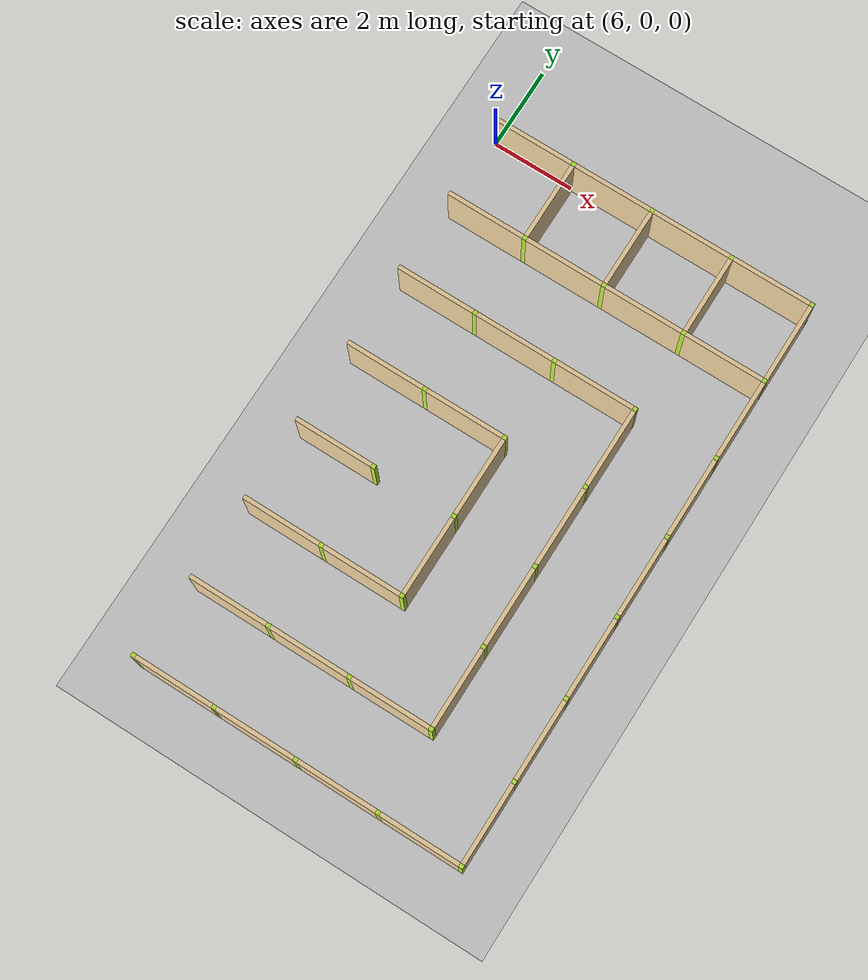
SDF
<sdf version="1.4">
 <world name="maze_world">
  <model name="ground">
   <static>true</static>
   <link name="ground_link">
    <collision name="collision1"><geometry><plane><normal>0 0 1</normal></plane></geometry></collision>
    <visual name="visual1"><geometry><plane><normal>0 0 1</normal><size>100 100</size></plane></geometry></visual>
   </link>
  </model>
  <model name="Untitled">
   <link name="Wall_3_0_h">
    <collision name="Wall_0_Collision">
     <geometry><box><size>1.9 0.1 1.5</size></box></geometry>
     <pose>0 0 0.75 0 -0 0</pose>
    </collision>
    <visual name="Wall_0_Visual">
     <pose>0 0 0.75 0 -0 0</pose>
     <geometry><box><size>1.9 0.1 1.5</size></box></geometry>
     <material>
      <script><uri>file://media/materials/scripts/gazebo.material</uri><name>Gazebo/Grey</name></script>
      <ambient>0.921569 0.807843 0.615686 1</ambient>
     </material>
     <meta><layer>0</layer></meta>
    </visual>
    <pose>7.0 0 0 0 -0 0</pose>
   </link>
   <link name="Wall_4_0_h">
    <collision name="Wall_0_Collision">
     <geometry><box><size>1.9 0.1 1.5</size></box></geometry>
     <pose>0 0 0.75 0 -0 0</pose>
    </collision>
    <visual name="Wall_0_Visual">
     <pose>0 0 0.75 0 -0 0</pose>
     <geometry><box><size>1.9 0.1 1.5</size></box></geometry>
     <material>
      <script><uri>file://media/materials/scripts/gazebo.material</uri><name>Gazebo/Grey</name></script>
      <ambient>0.921569 0.807843 0.615686 1</ambient>
     </material>
     <meta><layer>0</layer></meta>
    </visual>
    <pose>9.0 0 0 0 -0 0</pose>
   </link>
   <link name="Wall_4_0_v">
    <collision name="Wall_0_Collision">
     <geometry><box><size>1.9 0.1 1.5</size></box></geometry>
     <pose>0 0 0.75 0 -0 0</pose>
    </collision>
    <visual name="Wall_0_Visual">
     <pose>0 0 0.75 0 -0 0</pose>
     <geometry><box><size>1.9 0.1 1.5</size></box></geometry>
     <material>
      <script><uri>file://media/materials/scripts/gazebo.material</uri><name>Gazebo/Grey</name></script>
      <ambient>0.921569 0.807843 0.615686 1</ambient>
     </material>
     <meta><layer>0</layer></meta>
    </visual>
    <pose>8 -1.0 0 0 -0 1.5708</pose>
   </link>
   <link name="Joint_8_0">
    <collision name="Wall_2_Collision">
     <geometry><box><size>0.1 0.1 1.5</size></box></geometry>
     <pose>0 0 0.75 0 -0 0</pose>
    </collision>
    <visual name="Wall_2_Visual">
     <pose>0 0 0.75 0 -0 0</pose>
     <geometry><box><size>0.1 0.1 1.5</size></box></geometry>
     <material>
      <script><uri>file://media/materials/scripts/gazebo.material</uri><name>Gazebo/Grey</name></script>
      <ambient>0.721569 0.907843 0.215686 1</ambient>
     </material>
     <meta><layer>0</layer></meta>
    </visual>
    <pose>8 0 0 0 -0 0</pose>
   </link>
   <link name="Wall_5_0_h">
    <collision name="Wall_0_Collision">
     <geometry><box><size>1.9 0.1 1.5</size></box></geometry>
     <pose>0 0 0.75 0 -0 0</pose>
    </collision>
    <visual name="Wall_0_Visual">
     <pose>0 0 0.75 0 -0 0</pose>
     <geometry><box><size>1.9 0.1 1.5</size></box></geometry>
     <material>
      <script><uri>file://media/materials/scripts/gazebo.material</uri><name>Gazebo/Grey</name></script>
      <ambient>0.921569 0.807843 0.615686 1</ambient>
     </material>
     <meta><layer>0</layer></meta>
    </visual>
    <pose>11.0 0 0 0 -0 0</pose>
   </link>
   <link name="Wall_5_0_v">
    <collision name="Wall_0_Collision">
     <geometry><box><size>1.9 0.1 1.5</size></box></geometry>
     <pose>0 0 0.75 0 -0 0</pose>
    </collision>
    <visual name="Wall_0_Visual">
     <pose>0 0 0.75 0 -0 0</pose>
     <geometry><box><size>1.9 0.1 1.5</size></box></geometry>
     <material>
      <script><uri>file://media/materials/scripts/gazebo.material</uri><name>Gazebo/Grey</name></script>
      <ambient>0.921569 0.807843 0.615686 1</ambient>
     </material>
     <meta><layer>0</layer></meta>
    </visual>
    <pose>10 -1.0 0 0 -0 1.5708</pose>
   </link>
   <link name="Joint_10_0">
    <collision name="Wall_2_Collision">
     <geometry><box><size>0.1 0.1 1.5</size></box></geometry>
     <pose>0 0 0.75 0 -0 0</pose>
    </collision>
    <visual name="Wall_2_Visual">
     <pose>0 0 0.75 0 -0 0</pose>
     <geometry><box><size>0.1 0.1 1.5</size></box></geometry>
     <material>
      <script><uri>file://media/materials/scripts/gazebo.material</uri><name>Gazebo/Grey</name></script>
      <ambient>0.721569 0.907843 0.215686 1</ambient>
     </material>
     <meta><layer>0</layer></meta>
    </visual>
    <pose>10 0 0 0 -0 0</pose>
   </link>
   <link name="Wall_6_0_h">
    <collision name="Wall_0_Collision">
     <geometry><box><size>1.9 0.1 1.5</size></box></geometry>
     <pose>0 0 0.75 0 -0 0</pose>
    </collision>
    <visual name="Wall_0_Visual">
     <pose>0 0 0.75 0 -0 0</pose>
     <geometry><box><size>1.9 0.1 1.5</size></box></geometry>
     <material>
      <script><uri>file://media/materials/scripts/gazebo.material</uri><name>Gazebo/Grey</name></script>
      <ambient>0.921569 0.807843 0.615686 1</ambient>
     </material>
     <meta><layer>0</layer></meta>
    </visual>
    <pose>13.0 0 0 0 -0 0</pose>
   </link>
   <link name="Wall_6_0_v">
    <collision name="Wall_0_Collision">
     <geometry><box><size>1.9 0.1 1.5</size></box></geometry>
     <pose>0 0 0.75 0 -0 0</pose>
    </collision>
    <visual name="Wall_0_Visual">
     <pose>0 0 0.75 0 -0 0</pose>
     <geometry><box><size>1.9 0.1 1.5</size></box></geometry>
     <material>
      <script><uri>file://media/materials/scripts/gazebo.material</uri><name>Gazebo/Grey</name></script>
      <ambient>0.921569 0.807843 0.615686 1</ambient>
     </material>
     <meta><layer>0</layer></meta>
    </visual>
    <pose>12 -1.0 0 0 -0 1.5708</pose>
   </link>
   <link name="Joint_12_0">
    <collision name="Wall_2_Collision">
     <geometry><box><size>0.1 0.1 1.5</size></box></geometry>
     <pose>0 0 0.75 0 -0 0</pose>
    </collision>
    <visual name="Wall_2_Visual">
     <pose>0 0 0.75 0 -0 0</pose>
     <geometry><box><size>0.1 0.1 1.5</size></box></geometry>
     <material>
      <script><uri>file://media/materials/scripts/gazebo.material</uri><name>Gazebo/Grey</name></script>
      <ambient>0.721569 0.907843 0.215686 1</ambient>
     </material>
     <meta><layer>0</layer></meta>
    </visual>
    <pose>12 0 0 0 -0 0</pose>
   </link>
   <link name="Wall_7_0_v">
    <collision name="Wall_0_Collision">
     <geometry><box><size>1.9 0.1 1.5</size></box></geometry>
     <pose>0 0 0.75 0 -0 0</pose>
    </collision>
    <visual name="Wall_0_Visual">
     <pose>0 0 0.75 0 -0 0</pose>
     <geometry><box><size>1.9 0.1 1.5</size></box></geometry>
     <material>
      <script><uri>file://media/materials/scripts/gazebo.material</uri><name>Gazebo/Grey</name></script>
      <ambient>0.921569 0.807843 0.615686 1</ambient>
     </material>
     <meta><layer>0</layer></meta>
    </visual>
    <pose>14 -1.0 0 0 -0 1.5708</pose>
   </link>
   <link name="Joint_14_0">
    <collision name="Wall_2_Collision">
     <geometry><box><size>0.1 0.1 1.5</size></box></geometry>
     <pose>0 0 0.75 0 -0 0</pose>
    </collision>
    <visual name="Wall_2_Visual">
     <pose>0 0 0.75 0 -0 0</pose>
     <geometry><box><size>0.1 0.1 1.5</size></box></geometry>
     <material>
      <script><uri>file://media/materials/scripts/gazebo.material</uri><name>Gazebo/Grey</name></script>
      <ambient>0.721569 0.907843 0.215686 1</ambient>
     </material>
     <meta><layer>0</layer></meta>
    </visual>
    <pose>14 0 0 0 -0 0</pose>
   </link>
   <link name="Wall_3_1_h">
    <collision name="Wall_0_Collision">
     <geometry><box><size>1.9 0.1 1.5</size></box></geometry>
     <pose>0 0 0.75 0 -0 0</pose>
    </collision>
    <visual name="Wall_0_Visual">
     <pose>0 0 0.75 0 -0 0</pose>
     <geometry><box><size>1.9 0.1 1.5</size></box></geometry>
     <material>
      <script><uri>file://media/materials/scripts/gazebo.material</uri><name>Gazebo/Grey</name></script>
      <ambient>0.921569 0.807843 0.615686 1</ambient>
     </material>
     <meta><layer>0</layer></meta>
    </visual>
    <pose>7.0 -2 0 0 -0 0</pose>
   </link>
   <link name="Wall_4_1_h">
    <collision name="Wall_0_Collision">
     <geometry><box><size>1.9 0.1 1.5</size></box></geometry>
     <pose>0 0 0.75 0 -0 0</pose>
    </collision>
    <visual name="Wall_0_Visual">
     <pose>0 0 0.75 0 -0 0</pose>
     <geometry><box><size>1.9 0.1 1.5</size></box></geometry>
     <material>
      <script><uri>file://media/materials/scripts/gazebo.material</uri><name>Gazebo/Grey</name></script>
      <ambient>0.921569 0.807843 0.615686 1</ambient>
     </material>
     <meta><layer>0</layer></meta>
    </visual>
    <pose>9.0 -2 0 0 -0 0</pose>
   </link>
   <link name="Joint_8_-2">
    <collision name="Wall_2_Collision">
     <geometry><box><size>0.1 0.1 1.5</size></box></geometry>
     <pose>0 0 0.75 0 -0 0</pose>
    </collision>
    <visual name="Wall_2_Visual">
     <pose>0 0 0.75 0 -0 0</pose>
     <geometry><box><size>0.1 0.1 1.5</size></box></geometry>
     <material>
      <script><uri>file://media/materials/scripts/gazebo.material</uri><name>Gazebo/Grey</name></script>
      <ambient>0.721569 0.907843 0.215686 1</ambient>
     </material>
     <meta><layer>0</layer></meta>
    </visual>
    <pose>8 -2 0 0 -0 0</pose>
   </link>
   <link name="Wall_5_1_h">
    <collision name="Wall_0_Collision">
     <geometry><box><size>1.9 0.1 1.5</size></box></geometry>
     <pose>0 0 0.75 0 -0 0</pose>
    </collision>
    <visual name="Wall_0_Visual">
     <pose>0 0 0.75 0 -0 0</pose>
     <geometry><box><size>1.9 0.1 1.5</size></box></geometry>
     <material>
      <script><uri>file://media/materials/scripts/gazebo.material</uri><name>Gazebo/Grey</name></script>
      <ambient>0.921569 0.807843 0.615686 1</ambient>
     </material>
     <meta><layer>0</layer></meta>
    </visual>
    <pose>11.0 -2 0 0 -0 0</pose>
   </link>
   <link name="Joint_10_-2">
    <collision name="Wall_2_Collision">
     <geometry><box><size>0.1 0.1 1.5</size></box></geometry>
     <pose>0 0 0.75 0 -0 0</pose>
    </collision>
    <visual name="Wall_2_Visual">
     <pose>0 0 0.75 0 -0 0</pose>
     <geometry><box><size>0.1 0.1 1.5</size></box></geometry>
     <material>
      <script><uri>file://media/materials/scripts/gazebo.material</uri><name>Gazebo/Grey</name></script>
      <ambient>0.721569 0.907843 0.215686 1</ambient>
     </material>
     <meta><layer>0</layer></meta>
    </visual>
    <pose>10 -2 0 0 -0 0</pose>
   </link>
   <link name="Wall_6_1_h">
    <collision name="Wall_0_Collision">
     <geometry><box><size>1.9 0.1 1.5</size></box></geometry>
     <pose>0 0 0.75 0 -0 0</pose>
    </collision>
    <visual name="Wall_0_Visual">
     <pose>0 0 0.75 0 -0 0</pose>
     <geometry><box><size>1.9 0.1 1.5</size></box></geometry>
     <material>
      <script><uri>file://media/materials/scripts/gazebo.material</uri><name>Gazebo/Grey</name></script>
      <ambient>0.921569 0.807843 0.615686 1</ambient>
     </material>
     <meta><layer>0</layer></meta>
    </visual>
    <pose>13.0 -2 0 0 -0 0</pose>
   </link>
   <link name="Joint_12_-2">
    <collision name="Wall_2_Collision">
     <geometry><box><size>0.1 0.1 1.5</size></box></geometry>
     <pose>0 0 0.75 0 -0 0</pose>
    </collision>
    <visual name="Wall_2_Visual">
     <pose>0 0 0.75 0 -0 0</pose>
     <geometry><box><size>0.1 0.1 1.5</size></box></geometry>
     <material>
      <script><uri>file://media/materials/scripts/gazebo.material</uri><name>Gazebo/Grey</name></script>
      <ambient>0.721569 0.907843 0.215686 1</ambient>
     </material>
     <meta><layer>0</layer></meta>
    </visual>
    <pose>12 -2 0 0 -0 0</pose>
   </link>
   <link name="Wall_7_1_v">
    <collision name="Wall_0_Collision">
     <geometry><box><size>1.9 0.1 1.5</size></box></geometry>
     <pose>0 0 0.75 0 -0 0</pose>
    </collision>
    <visual name="Wall_0_Visual">
     <pose>0 0 0.75 0 -0 0</pose>
     <geometry><box><size>1.9 0.1 1.5</size></box></geometry>
     <material>
      <script><uri>file://media/materials/scripts/gazebo.material</uri><name>Gazebo/Grey</name></script>
      <ambient>0.921569 0.807843 0.615686 1</ambient>
     </material>
     <meta><layer>0</layer></meta>
    </visual>
    <pose>14 -3.0 0 0 -0 1.5708</pose>
   </link>
   <link name="Joint_14_-2">
    <collision name="Wall_2_Collision">
     <geometry><box><size>0.1 0.1 1.5</size></box></geometry>
     <pose>0 0 0.75 0 -0 0</pose>
    </collision>
    <visual name="Wall_2_Visual">
     <pose>0 0 0.75 0 -0 0</pose>
     <geometry><box><size>0.1 0.1 1.5</size></box></geometry>
     <material>
      <script><uri>file://media/materials/scripts/gazebo.material</uri><name>Gazebo/Grey</name></script>
      <ambient>0.721569 0.907843 0.215686 1</ambient>
     </material>
     <meta><layer>0</layer></meta>
    </visual>
    <pose>14 -2 0 0 -0 0</pose>
   </link>
   <link name="Wall_3_2_h">
    <collision name="Wall_0_Collision">
     <geometry><box><size>1.9 0.1 1.5</size></box></geometry>
     <pose>0 0 0.75 0 -0 0</pose>
    </collision>
    <visual name="Wall_0_Visual">
     <pose>0 0 0.75 0 -0 0</pose>
     <geometry><box><size>1.9 0.1 1.5</size></box></geometry>
     <material>
      <script><uri>file://media/materials/scripts/gazebo.material</uri><name>Gazebo/Grey</name></script>
      <ambient>0.921569 0.807843 0.615686 1</ambient>
     </material>
     <meta><layer>0</layer></meta>
    </visual>
    <pose>7.0 -4 0 0 -0 0</pose>
   </link>
   <link name="Wall_4_2_h">
    <collision name="Wall_0_Collision">
     <geometry><box><size>1.9 0.1 1.5</size></box></geometry>
     <pose>0 0 0.75 0 -0 0</pose>
    </collision>
    <visual name="Wall_0_Visual">
     <pose>0 0 0.75 0 -0 0</pose>
     <geometry><box><size>1.9 0.1 1.5</size></box></geometry>
     <material>
      <script><uri>file://media/materials/scripts/gazebo.material</uri><name>Gazebo/Grey</name></script>
      <ambient>0.921569 0.807843 0.615686 1</ambient>
     </material>
     <meta><layer>0</layer></meta>
    </visual>
    <pose>9.0 -4 0 0 -0 0</pose>
   </link>
   <link name="Joint_8_-4">
    <collision name="Wall_2_Collision">
     <geometry><box><size>0.1 0.1 1.5</size></box></geometry>
     <pose>0 0 0.75 0 -0 0</pose>
    </collision>
    <visual name="Wall_2_Visual">
     <pose>0 0 0.75 0 -0 0</pose>
     <geometry><box><size>0.1 0.1 1.5</size></box></geometry>
     <material>
      <script><uri>file://media/materials/scripts/gazebo.material</uri><name>Gazebo/Grey</name></script>
      <ambient>0.721569 0.907843 0.215686 1</ambient>
     </material>
     <meta><layer>0</layer></meta>
    </visual>
    <pose>8 -4 0 0 -0 0</pose>
   </link>
   <link name="Wall_5_2_h">
    <collision name="Wall_0_Collision">
     <geometry><box><size>1.9 0.1 1.5</size></box></geometry>
     <pose>0 0 0.75 0 -0 0</pose>
    </collision>
    <visual name="Wall_0_Visual">
     <pose>0 0 0.75 0 -0 0</pose>
     <geometry><box><size>1.9 0.1 1.5</size></box></geometry>
     <material>
      <script><uri>file://media/materials/scripts/gazebo.material</uri><name>Gazebo/Grey</name></script>
      <ambient>0.921569 0.807843 0.615686 1</ambient>
     </material>
     <meta><layer>0</layer></meta>
    </visual>
    <pose>11.0 -4 0 0 -0 0</pose>
   </link>
   <link name="Joint_10_-4">
    <collision name="Wall_2_Collision">
     <geometry><box><size>0.1 0.1 1.5</size></box></geometry>
     <pose>0 0 0.75 0 -0 0</pose>
    </collision>
    <visual name="Wall_2_Visual">
     <pose>0 0 0.75 0 -0 0</pose>
     <geometry><box><size>0.1 0.1 1.5</size></box></geometry>
     <material>
      <script><uri>file://media/materials/scripts/gazebo.material</uri><name>Gazebo/Grey</name></script>
      <ambient>0.721569 0.907843 0.215686 1</ambient>
     </material>
     <meta><layer>0</layer></meta>
    </visual>
    <pose>10 -4 0 0 -0 0</pose>
   </link>
   <link name="Wall_6_2_v">
    <collision name="Wall_0_Collision">
     <geometry><box><size>1.9 0.1 1.5</size></box></geometry>
     <pose>0 0 0.75 0 -0 0</pose>
    </collision>
    <visual name="Wall_0_Visual">
     <pose>0 0 0.75 0 -0 0</pose>
     <geometry><box><size>1.9 0.1 1.5</size></box></geometry>
     <material>
      <script><uri>file://media/materials/scripts/gazebo.material</uri><name>Gazebo/Grey</name></script>
      <ambient>0.921569 0.807843 0.615686 1</ambient>
     </material>
     <meta><layer>0</layer></meta>
    </visual>
    <pose>12 -5.0 0 0 -0 1.5708</pose>
   </link>
   <link name="Joint_12_-4">
    <collision name="Wall_2_Collision">
     <geometry><box><size>0.1 0.1 1.5</size></box></geometry>
     <pose>0 0 0.75 0 -0 0</pose>
    </collision>
    <visual name="Wall_2_Visual">
     <pose>0 0 0.75 0 -0 0</pose>
     <geometry><box><size>0.1 0.1 1.5</size></box></geometry>
     <material>
      <script><uri>file://media/materials/scripts/gazebo.material</uri><name>Gazebo/Grey</name></script>
      <ambient>0.721569 0.907843 0.215686 1</ambient>
     </material>
     <meta><layer>0</layer></meta>
    </visual>
    <pose>12 -4 0 0 -0 0</pose>
   </link>
   <link name="Wall_7_2_v">
    <collision name="Wall_0_Collision">
     <geometry><box><size>1.9 0.1 1.5</size></box></geometry>
     <pose>0 0 0.75 0 -0 0</pose>
    </collision>
    <visual name="Wall_0_Visual">
     <pose>0 0 0.75 0 -0 0</pose>
     <geometry><box><size>1.9 0.1 1.5</size></box></geometry>
     <material>
      <script><uri>file://media/materials/scripts/gazebo.material</uri><name>Gazebo/Grey</name></script>
      <ambient>0.921569 0.807843 0.615686 1</ambient>
     </material>
     <meta><layer>0</layer></meta>
    </visual>
    <pose>14 -5.0 0 0 -0 1.5708</pose>
   </link>
   <link name="Joint_14_-4">
    <collision name="Wall_2_Collision">
     <geometry><box><size>0.1 0.1 1.5</size></box></geometry>
     <pose>0 0 0.75 0 -0 0</pose>
    </collision>
    <visual name="Wall_2_Visual">
     <pose>0 0 0.75 0 -0 0</pose>
     <geometry><box><size>0.1 0.1 1.5</size></box></geometry>
     <material>
      <script><uri>file://media/materials/scripts/gazebo.material</uri><name>Gazebo/Grey</name></script>
      <ambient>0.721569 0.907843 0.215686 1</ambient>
     </material>
     <meta><layer>0</layer></meta>
    </visual>
    <pose>14 -4 0 0 -0 0</pose>
   </link>
   <link name="Wall_3_3_h">
    <collision name="Wall_0_Collision">
     <geometry><box><size>1.9 0.1 1.5</size></box></geometry>
     <pose>0 0 0.75 0 -0 0</pose>
    </collision>
    <visual name="Wall_0_Visual">
     <pose>0 0 0.75 0 -0 0</pose>
     <geometry><box><size>1.9 0.1 1.5</size></box></geometry>
     <material>
      <script><uri>file://media/materials/scripts/gazebo.material</uri><name>Gazebo/Grey</name></script>
      <ambient>0.921569 0.807843 0.615686 1</ambient>
     </material>
     <meta><layer>0</layer></meta>
    </visual>
    <pose>7.0 -6 0 0 -0 0</pose>
   </link>
   <link name="Wall_4_3_h">
    <collision name="Wall_0_Collision">
     <geometry><box><size>1.9 0.1 1.5</size></box></geometry>
     <pose>0 0 0.75 0 -0 0</pose>
    </collision>
    <visual name="Wall_0_Visual">
     <pose>0 0 0.75 0 -0 0</pose>
     <geometry><box><size>1.9 0.1 1.5</size></box></geometry>
     <material>
      <script><uri>file://media/materials/scripts/gazebo.material</uri><name>Gazebo/Grey</name></script>
      <ambient>0.921569 0.807843 0.615686 1</ambient>
     </material>
     <meta><layer>0</layer></meta>
    </visual>
    <pose>9.0 -6 0 0 -0 0</pose>
   </link>
   <link name="Joint_8_-6">
    <collision name="Wall_2_Collision">
     <geometry><box><size>0.1 0.1 1.5</size></box></geometry>
     <pose>0 0 0.75 0 -0 0</pose>
    </collision>
    <visual name="Wall_2_Visual">
     <pose>0 0 0.75 0 -0 0</pose>
     <geometry><box><size>0.1 0.1 1.5</size></box></geometry>
     <material>
      <script><uri>file://media/materials/scripts/gazebo.material</uri><name>Gazebo/Grey</name></script>
      <ambient>0.721569 0.907843 0.215686 1</ambient>
     </material>
     <meta><layer>0</layer></meta>
    </visual>
    <pose>8 -6 0 0 -0 0</pose>
   </link>
   <link name="Wall_5_3_v">
    <collision name="Wall_0_Collision">
     <geometry><box><size>1.9 0.1 1.5</size></box></geometry>
     <pose>0 0 0.75 0 -0 0</pose>
    </collision>
    <visual name="Wall_0_Visual">
     <pose>0 0 0.75 0 -0 0</pose>
     <geometry><box><size>1.9 0.1 1.5</size></box></geometry>
     <material>
      <script><uri>file://media/materials/scripts/gazebo.material</uri><name>Gazebo/Grey</name></script>
      <ambient>0.921569 0.807843 0.615686 1</ambient>
     </material>
     <meta><layer>0</layer></meta>
    </visual>
    <pose>10 -7.0 0 0 -0 1.5708</pose>
   </link>
   <link name="Joint_10_-6">
    <collision name="Wall_2_Collision">
     <geometry><box><size>0.1 0.1 1.5</size></box></geometry>
     <pose>0 0 0.75 0 -0 0</pose>
    </collision>
    <visual name="Wall_2_Visual">
     <pose>0 0 0.75 0 -0 0</pose>
     <geometry><box><size>0.1 0.1 1.5</size></box></geometry>
     <material>
      <script><uri>file://media/materials/scripts/gazebo.material</uri><name>Gazebo/Grey</name></script>
      <ambient>0.721569 0.907843 0.215686 1</ambient>
     </material>
     <meta><layer>0</layer></meta>
    </visual>
    <pose>10 -6 0 0 -0 0</pose>
   </link>
   <link name="Wall_6_3_v">
    <collision name="Wall_0_Collision">
     <geometry><box><size>1.9 0.1 1.5</size></box></geometry>
     <pose>0 0 0.75 0 -0 0</pose>
    </collision>
    <visual name="Wall_0_Visual">
     <pose>0 0 0.75 0 -0 0</pose>
     <geometry><box><size>1.9 0.1 1.5</size></box></geometry>
     <material>
      <script><uri>file://media/materials/scripts/gazebo.material</uri><name>Gazebo/Grey</name></script>
      <ambient>0.921569 0.807843 0.615686 1</ambient>
     </material>
     <meta><layer>0</layer></meta>
    </visual>
    <pose>12 -7.0 0 0 -0 1.5708</pose>
   </link>
   <link name="Joint_12_-6">
    <collision name="Wall_2_Collision">
     <geometry><box><size>0.1 0.1 1.5</size></box></geometry>
     <pose>0 0 0.75 0 -0 0</pose>
    </collision>
    <visual name="Wall_2_Visual">
     <pose>0 0 0.75 0 -0 0</pose>
     <geometry><box><size>0.1 0.1 1.5</size></box></geometry>
     <material>
      <script><uri>file://media/materials/scripts/gazebo.material</uri><name>Gazebo/Grey</name></script>
      <ambient>0.721569 0.907843 0.215686 1</ambient>
     </material>
     <meta><layer>0</layer></meta>
    </visual>
    <pose>12 -6 0 0 -0 0</pose>
   </link>
   <link name="Wall_7_3_v">
    <collision name="Wall_0_Collision">
     <geometry><box><size>1.9 0.1 1.5</size></box></geometry>
     <pose>0 0 0.75 0 -0 0</pose>
    </collision>
    <visual name="Wall_0_Visual">
     <pose>0 0 0.75 0 -0 0</pose>
     <geometry><box><size>1.9 0.1 1.5</size></box></geometry>
     <material>
      <script><uri>file://media/materials/scripts/gazebo.material</uri><name>Gazebo/Grey</name></script>
      <ambient>0.921569 0.807843 0.615686 1</ambient>
     </material>
     <meta><layer>0</layer></meta>
    </visual>
    <pose>14 -7.0 0 0 -0 1.5708</pose>
   </link>
   <link name="Joint_14_-6">
    <collision name="Wall_2_Collision">
     <geometry><box><size>0.1 0.1 1.5</size></box></geometry>
     <pose>0 0 0.75 0 -0 0</pose>
    </collision>
    <visual name="Wall_2_Visual">
     <pose>0 0 0.75 0 -0 0</pose>
     <geometry><box><size>0.1 0.1 1.5</size></box></geometry>
     <material>
      <script><uri>file://media/materials/scripts/gazebo.material</uri><name>Gazebo/Grey</name></script>
      <ambient>0.721569 0.907843 0.215686 1</ambient>
     </material>
     <meta><layer>0</layer></meta>
    </visual>
    <pose>14 -6 0 0 -0 0</pose>
   </link>
   <link name="Wall_3_4_h">
    <collision name="Wall_0_Collision">
     <geometry><box><size>1.9 0.1 1.5</size></box></geometry>
     <pose>0 0 0.75 0 -0 0</pose>
    </collision>
    <visual name="Wall_0_Visual">
     <pose>0 0 0.75 0 -0 0</pose>
     <geometry><box><size>1.9 0.1 1.5</size></box></geometry>
     <material>
      <script><uri>file://media/materials/scripts/gazebo.material</uri><name>Gazebo/Grey</name></script>
      <ambient>0.921569 0.807843 0.615686 1</ambient>
     </material>
     <meta><layer>0</layer></meta>
    </visual>
    <pose>7.0 -8 0 0 -0 0</pose>
   </link>
   <link name="Joint_8_-8">
    <collision name="Wall_2_Collision">
     <geometry><box><size>0.1 0.1 1.5</size></box></geometry>
     <pose>0 0 0.75 0 -0 0</pose>
    </collision>
    <visual name="Wall_2_Visual">
     <pose>0 0 0.75 0 -0 0</pose>
     <geometry><box><size>0.1 0.1 1.5</size></box></geometry>
     <material>
      <script><uri>file://media/materials/scripts/gazebo.material</uri><name>Gazebo/Grey</name></script>
      <ambient>0.721569 0.907843 0.215686 1</ambient>
     </material>
     <meta><layer>0</layer></meta>
    </visual>
    <pose>8 -8 0 0 -0 0</pose>
   </link>
   <link name="Wall_5_4_v">
    <collision name="Wall_0_Collision">
     <geometry><box><size>1.9 0.1 1.5</size></box></geometry>
     <pose>0 0 0.75 0 -0 0</pose>
    </collision>
    <visual name="Wall_0_Visual">
     <pose>0 0 0.75 0 -0 0</pose>
     <geometry><box><size>1.9 0.1 1.5</size></box></geometry>
     <material>
      <script><uri>file://media/materials/scripts/gazebo.material</uri><name>Gazebo/Grey</name></script>
      <ambient>0.921569 0.807843 0.615686 1</ambient>
     </material>
     <meta><layer>0</layer></meta>
    </visual>
    <pose>10 -9.0 0 0 -0 1.5708</pose>
   </link>
   <link name="Joint_10_-8">
    <collision name="Wall_2_Collision">
     <geometry><box><size>0.1 0.1 1.5</size></box></geometry>
     <pose>0 0 0.75 0 -0 0</pose>
    </collision>
    <visual name="Wall_2_Visual">
     <pose>0 0 0.75 0 -0 0</pose>
     <geometry><box><size>0.1 0.1 1.5</size></box></geometry>
     <material>
      <script><uri>file://media/materials/scripts/gazebo.material</uri><name>Gazebo/Grey</name></script>
      <ambient>0.721569 0.907843 0.215686 1</ambient>
     </material>
     <meta><layer>0</layer></meta>
    </visual>
    <pose>10 -8 0 0 -0 0</pose>
   </link>
   <link name="Wall_6_4_v">
    <collision name="Wall_0_Collision">
     <geometry><box><size>1.9 0.1 1.5</size></box></geometry>
     <pose>0 0 0.75 0 -0 0</pose>
    </collision>
    <visual name="Wall_0_Visual">
     <pose>0 0 0.75 0 -0 0</pose>
     <geometry><box><size>1.9 0.1 1.5</size></box></geometry>
     <material>
      <script><uri>file://media/materials/scripts/gazebo.material</uri><name>Gazebo/Grey</name></script>
      <ambient>0.921569 0.807843 0.615686 1</ambient>
     </material>
     <meta><layer>0</layer></meta>
    </visual>
    <pose>12 -9.0 0 0 -0 1.5708</pose>
   </link>
   <link name="Joint_12_-8">
    <collision name="Wall_2_Collision">
     <geometry><box><size>0.1 0.1 1.5</size></box></geometry>
     <pose>0 0 0.75 0 -0 0</pose>
    </collision>
    <visual name="Wall_2_Visual">
     <pose>0 0 0.75 0 -0 0</pose>
     <geometry><box><size>0.1 0.1 1.5</size></box></geometry>
     <material>
      <script><uri>file://media/materials/scripts/gazebo.material</uri><name>Gazebo/Grey</name></script>
      <ambient>0.721569 0.907843 0.215686 1</ambient>
     </material>
     <meta><layer>0</layer></meta>
    </visual>
    <pose>12 -8 0 0 -0 0</pose>
   </link>
   <link name="Wall_7_4_v">
    <collision name="Wall_0_Collision">
     <geometry><box><size>1.9 0.1 1.5</size></box></geometry>
     <pose>0 0 0.75 0 -0 0</pose>
    </collision>
    <visual name="Wall_0_Visual">
     <pose>0 0 0.75 0 -0 0</pose>
     <geometry><box><size>1.9 0.1 1.5</size></box></geometry>
     <material>
      <script><uri>file://media/materials/scripts/gazebo.material</uri><name>Gazebo/Grey</name></script>
      <ambient>0.921569 0.807843 0.615686 1</ambient>
     </material>
     <meta><layer>0</layer></meta>
    </visual>
    <pose>14 -9.0 0 0 -0 1.5708</pose>
   </link>
   <link name="Joint_14_-8">
    <collision name="Wall_2_Collision">
     <geometry><box><size>0.1 0.1 1.5</size></box></geometry>
     <pose>0 0 0.75 0 -0 0</pose>
    </collision>
    <visual name="Wall_2_Visual">
     <pose>0 0 0.75 0 -0 0</pose>
     <geometry><box><size>0.1 0.1 1.5</size></box></geometry>
     <material>
      <script><uri>file://media/materials/scripts/gazebo.material</uri><name>Gazebo/Grey</name></script>
      <ambient>0.721569 0.907843 0.215686 1</ambient>
     </material>
     <meta><layer>0</layer></meta>
    </visual>
    <pose>14 -8 0 0 -0 0</pose>
   </link>
   <link name="Wall_3_5_h">
    <collision name="Wall_0_Collision">
     <geometry><box><size>1.9 0.1 1.5</size></box></geometry>
     <pose>0 0 0.75 0 -0 0</pose>
    </collision>
    <visual name="Wall_0_Visual">
     <pose>0 0 0.75 0 -0 0</pose>
     <geometry><box><size>1.9 0.1 1.5</size></box></geometry>
     <material>
      <script><uri>file://media/materials/scripts/gazebo.material</uri><name>Gazebo/Grey</name></script>
      <ambient>0.921569 0.807843 0.615686 1</ambient>
     </material>
     <meta><layer>0</layer></meta>
    </visual>
    <pose>7.0 -10 0 0 -0 0</pose>
   </link>
   <link name="Wall_4_5_h">
    <collision name="Wall_0_Collision">
     <geometry><box><size>1.9 0.1 1.5</size></box></geometry>
     <pose>0 0 0.75 0 -0 0</pose>
    </collision>
    <visual name="Wall_0_Visual">
     <pose>0 0 0.75 0 -0 0</pose>
     <geometry><box><size>1.9 0.1 1.5</size></box></geometry>
     <material>
      <script><uri>file://media/materials/scripts/gazebo.material</uri><name>Gazebo/Grey</name></script>
      <ambient>0.921569 0.807843 0.615686 1</ambient>
     </material>
     <meta><layer>0</layer></meta>
    </visual>
    <pose>9.0 -10 0 0 -0 0</pose>
   </link>
   <link name="Joint_8_-10">
    <collision name="Wall_2_Collision">
     <geometry><box><size>0.1 0.1 1.5</size></box></geometry>
     <pose>0 0 0.75 0 -0 0</pose>
    </collision>
    <visual name="Wall_2_Visual">
     <pose>0 0 0.75 0 -0 0</pose>
     <geometry><box><size>0.1 0.1 1.5</size></box></geometry>
     <material>
      <script><uri>file://media/materials/scripts/gazebo.material</uri><name>Gazebo/Grey</name></script>
      <ambient>0.721569 0.907843 0.215686 1</ambient>
     </material>
     <meta><layer>0</layer></meta>
    </visual>
    <pose>8 -10 0 0 -0 0</pose>
   </link>
   <link name="Joint_10_-10">
    <collision name="Wall_2_Collision">
     <geometry><box><size>0.1 0.1 1.5</size></box></geometry>
     <pose>0 0 0.75 0 -0 0</pose>
    </collision>
    <visual name="Wall_2_Visual">
     <pose>0 0 0.75 0 -0 0</pose>
     <geometry><box><size>0.1 0.1 1.5</size></box></geometry>
     <material>
      <script><uri>file://media/materials/scripts/gazebo.material</uri><name>Gazebo/Grey</name></script>
      <ambient>0.721569 0.907843 0.215686 1</ambient>
     </material>
     <meta><layer>0</layer></meta>
    </visual>
    <pose>10 -10 0 0 -0 0</pose>
   </link>
   <link name="Wall_6_5_v">
    <collision name="Wall_0_Collision">
     <geometry><box><size>1.9 0.1 1.5</size></box></geometry>
     <pose>0 0 0.75 0 -0 0</pose>
    </collision>
    <visual name="Wall_0_Visual">
     <pose>0 0 0.75 0 -0 0</pose>
     <geometry><box><size>1.9 0.1 1.5</size></box></geometry>
     <material>
      <script><uri>file://media/materials/scripts/gazebo.material</uri><name>Gazebo/Grey</name></script>
      <ambient>0.921569 0.807843 0.615686 1</ambient>
     </material>
     <meta><layer>0</layer></meta>
    </visual>
    <pose>12 -11.0 0 0 -0 1.5708</pose>
   </link>
   <link name="Joint_12_-10">
    <collision name="Wall_2_Collision">
     <geometry><box><size>0.1 0.1 1.5</size></box></geometry>
     <pose>0 0 0.75 0 -0 0</pose>
    </collision>
    <visual name="Wall_2_Visual">
     <pose>0 0 0.75 0 -0 0</pose>
     <geometry><box><size>0.1 0.1 1.5</size></box></geometry>
     <material>
      <script><uri>file://media/materials/scripts/gazebo.material</uri><name>Gazebo/Grey</name></script>
      <ambient>0.721569 0.907843 0.215686 1</ambient>
     </material>
     <meta><layer>0</layer></meta>
    </visual>
    <pose>12 -10 0 0 -0 0</pose>
   </link>
   <link name="Wall_7_5_v">
    <collision name="Wall_0_Collision">
     <geometry><box><size>1.9 0.1 1.5</size></box></geometry>
     <pose>0 0 0.75 0 -0 0</pose>
    </collision>
    <visual name="Wall_0_Visual">
     <pose>0 0 0.75 0 -0 0</pose>
     <geometry><box><size>1.9 0.1 1.5</size></box></geometry>
     <material>
      <script><uri>file://media/materials/scripts/gazebo.material</uri><name>Gazebo/Grey</name></script>
      <ambient>0.921569 0.807843 0.615686 1</ambient>
     </material>
     <meta><layer>0</layer></meta>
    </visual>
    <pose>14 -11.0 0 0 -0 1.5708</pose>
   </link>
   <link name="Joint_14_-10">
    <collision name="Wall_2_Collision">
     <geometry><box><size>0.1 0.1 1.5</size></box></geometry>
     <pose>0 0 0.75 0 -0 0</pose>
    </collision>
    <visual name="Wall_2_Visual">
     <pose>0 0 0.75 0 -0 0</pose>
     <geometry><box><size>0.1 0.1 1.5</size></box></geometry>
     <material>
      <script><uri>file://media/materials/scripts/gazebo.material</uri><name>Gazebo/Grey</name></script>
      <ambient>0.721569 0.907843 0.215686 1</ambient>
     </material>
     <meta><layer>0</layer></meta>
    </visual>
    <pose>14 -10 0 0 -0 0</pose>
   </link>
   <link name="Wall_3_6_h">
    <collision name="Wall_0_Collision">
     <geometry><box><size>1.9 0.1 1.5</size></box></geometry>
     <pose>0 0 0.75 0 -0 0</pose>
    </collision>
    <visual name="Wall_0_Visual">
     <pose>0 0 0.75 0 -0 0</pose>
     <geometry><box><size>1.9 0.1 1.5</size></box></geometry>
     <material>
      <script><uri>file://media/materials/scripts/gazebo.material</uri><name>Gazebo/Grey</name></script>
      <ambient>0.921569 0.807843 0.615686 1</ambient>
     </material>
     <meta><layer>0</layer></meta>
    </visual>
    <pose>7.0 -12 0 0 -0 0</pose>
   </link>
   <link name="Wall_3_7_h">
    <collision name="Wall_0_Collision">
     <geometry><box><size>1.9 0.1 1.5</size></box></geometry>
     <pose>0 0 0.75 0 -0 0</pose>
    </collision>
    <visual name="Wall_0_Visual">
     <pose>0 0 0.75 0 -0 0</pose>
     <geometry><box><size>1.9 0.1 1.5</size></box></geometry>
     <material>
      <script><uri>file://media/materials/scripts/gazebo.material</uri><name>Gazebo/Grey</name></script>
      <ambient>0.921569 0.807843 0.615686 1</ambient>
     </material>
     <meta><layer>0</layer></meta>
    </visual>
    <pose>7.0 -14 0 0 -0 0</pose>
   </link>
   <link name="Joint_6_-14">
    <collision name="Wall_2_Collision">
     <geometry><box><size>0.1 0.1 1.5</size></box></geometry>
     <pose>0 0 0.75 0 -0 0</pose>
    </collision>
    <visual name="Wall_2_Visual">
     <pose>0 0 0.75 0 -0 0</pose>
     <geometry><box><size>0.1 0.1 1.5</size></box></geometry>
     <material>
      <script><uri>file://media/materials/scripts/gazebo.material</uri><name>Gazebo/Grey</name></script>
      <ambient>0.721569 0.907843 0.215686 1</ambient>
     </material>
     <meta><layer>0</layer></meta>
    </visual>
    <pose>6 -14 0 0 -0 0</pose>
   </link>
   <link name="Wall_4_6_h">
    <collision name="Wall_0_Collision">
     <geometry><box><size>1.9 0.1 1.5</size></box></geometry>
     <pose>0 0 0.75 0 -0 0</pose>
    </collision>
    <visual name="Wall_0_Visual">
     <pose>0 0 0.75 0 -0 0</pose>
     <geometry><box><size>1.9 0.1 1.5</size></box></geometry>
     <material>
      <script><uri>file://media/materials/scripts/gazebo.material</uri><name>Gazebo/Grey</name></script>
      <ambient>0.921569 0.807843 0.615686 1</ambient>
     </material>
     <meta><layer>0</layer></meta>
    </visual>
    <pose>9.0 -12 0 0 -0 0</pose>
   </link>
   <link name="Joint_8_-12">
    <collision name="Wall_2_Collision">
     <geometry><box><size>0.1 0.1 1.5</size></box></geometry>
     <pose>0 0 0.75 0 -0 0</pose>
    </collision>
    <visual name="Wall_2_Visual">
     <pose>0 0 0.75 0 -0 0</pose>
     <geometry><box><size>0.1 0.1 1.5</size></box></geometry>
     <material>
      <script><uri>file://media/materials/scripts/gazebo.material</uri><name>Gazebo/Grey</name></script>
      <ambient>0.721569 0.907843 0.215686 1</ambient>
     </material>
     <meta><layer>0</layer></meta>
    </visual>
    <pose>8 -12 0 0 -0 0</pose>
   </link>
   <link name="Wall_4_7_h">
    <collision name="Wall_0_Collision">
     <geometry><box><size>1.9 0.1 1.5</size></box></geometry>
     <pose>0 0 0.75 0 -0 0</pose>
    </collision>
    <visual name="Wall_0_Visual">
     <pose>0 0 0.75 0 -0 0</pose>
     <geometry><box><size>1.9 0.1 1.5</size></box></geometry>
     <material>
      <script><uri>file://media/materials/scripts/gazebo.material</uri><name>Gazebo/Grey</name></script>
      <ambient>0.921569 0.807843 0.615686 1</ambient>
     </material>
     <meta><layer>0</layer></meta>
    </visual>
    <pose>9.0 -14 0 0 -0 0</pose>
   </link>
   <link name="Joint_8_-14">
    <collision name="Wall_2_Collision">
     <geometry><box><size>0.1 0.1 1.5</size></box></geometry>
     <pose>0 0 0.75 0 -0 0</pose>
    </collision>
    <visual name="Wall_2_Visual">
     <pose>0 0 0.75 0 -0 0</pose>
     <geometry><box><size>0.1 0.1 1.5</size></box></geometry>
     <material>
      <script><uri>file://media/materials/scripts/gazebo.material</uri><name>Gazebo/Grey</name></script>
      <ambient>0.721569 0.907843 0.215686 1</ambient>
     </material>
     <meta><layer>0</layer></meta>
    </visual>
    <pose>8 -14 0 0 -0 0</pose>
   </link>
   <link name="Wall_5_6_h">
    <collision name="Wall_0_Collision">
     <geometry><box><size>1.9 0.1 1.5</size></box></geometry>
     <pose>0 0 0.75 0 -0 0</pose>
    </collision>
    <visual name="Wall_0_Visual">
     <pose>0 0 0.75 0 -0 0</pose>
     <geometry><box><size>1.9 0.1 1.5</size></box></geometry>
     <material>
      <script><uri>file://media/materials/scripts/gazebo.material</uri><name>Gazebo/Grey</name></script>
      <ambient>0.921569 0.807843 0.615686 1</ambient>
     </material>
     <meta><layer>0</layer></meta>
    </visual>
    <pose>11.0 -12 0 0 -0 0</pose>
   </link>
   <link name="Joint_10_-12">
    <collision name="Wall_2_Collision">
     <geometry><box><size>0.1 0.1 1.5</size></box></geometry>
     <pose>0 0 0.75 0 -0 0</pose>
    </collision>
    <visual name="Wall_2_Visual">
     <pose>0 0 0.75 0 -0 0</pose>
     <geometry><box><size>0.1 0.1 1.5</size></box></geometry>
     <material>
      <script><uri>file://media/materials/scripts/gazebo.material</uri><name>Gazebo/Grey</name></script>
      <ambient>0.721569 0.907843 0.215686 1</ambient>
     </material>
     <meta><layer>0</layer></meta>
    </visual>
    <pose>10 -12 0 0 -0 0</pose>
   </link>
   <link name="Wall_5_7_h">
    <collision name="Wall_0_Collision">
     <geometry><box><size>1.9 0.1 1.5</size></box></geometry>
     <pose>0 0 0.75 0 -0 0</pose>
    </collision>
    <visual name="Wall_0_Visual">
     <pose>0 0 0.75 0 -0 0</pose>
     <geometry><box><size>1.9 0.1 1.5</size></box></geometry>
     <material>
      <script><uri>file://media/materials/scripts/gazebo.material</uri><name>Gazebo/Grey</name></script>
      <ambient>0.921569 0.807843 0.615686 1</ambient>
     </material>
     <meta><layer>0</layer></meta>
    </visual>
    <pose>11.0 -14 0 0 -0 0</pose>
   </link>
   <link name="Joint_10_-14">
    <collision name="Wall_2_Collision">
     <geometry><box><size>0.1 0.1 1.5</size></box></geometry>
     <pose>0 0 0.75 0 -0 0</pose>
    </collision>
    <visual name="Wall_2_Visual">
     <pose>0 0 0.75 0 -0 0</pose>
     <geometry><box><size>0.1 0.1 1.5</size></box></geometry>
     <material>
      <script><uri>file://media/materials/scripts/gazebo.material</uri><name>Gazebo/Grey</name></script>
      <ambient>0.721569 0.907843 0.215686 1</ambient>
     </material>
     <meta><layer>0</layer></meta>
    </visual>
    <pose>10 -14 0 0 -0 0</pose>
   </link>
   <link name="Joint_12_-12">
    <collision name="Wall_2_Collision">
     <geometry><box><size>0.1 0.1 1.5</size></box></geometry>
     <pose>0 0 0.75 0 -0 0</pose>
    </collision>
    <visual name="Wall_2_Visual">
     <pose>0 0 0.75 0 -0 0</pose>
     <geometry><box><size>0.1 0.1 1.5</size></box></geometry>
     <material>
      <script><uri>file://media/materials/scripts/gazebo.material</uri><name>Gazebo/Grey</name></script>
      <ambient>0.721569 0.907843 0.215686 1</ambient>
     </material>
     <meta><layer>0</layer></meta>
    </visual>
    <pose>12 -12 0 0 -0 0</pose>
   </link>
   <link name="Wall_6_7_h">
    <collision name="Wall_0_Collision">
     <geometry><box><size>1.9 0.1 1.5</size></box></geometry>
     <pose>0 0 0.75 0 -0 0</pose>
    </collision>
    <visual name="Wall_0_Visual">
     <pose>0 0 0.75 0 -0 0</pose>
     <geometry><box><size>1.9 0.1 1.5</size></box></geometry>
     <material>
      <script><uri>file://media/materials/scripts/gazebo.material</uri><name>Gazebo/Grey</name></script>
      <ambient>0.921569 0.807843 0.615686 1</ambient>
     </material>
     <meta><layer>0</layer></meta>
    </visual>
    <pose>13.0 -14 0 0 -0 0</pose>
   </link>
   <link name="Joint_12_-14">
    <collision name="Wall_2_Collision">
     <geometry><box><size>0.1 0.1 1.5</size></box></geometry>
     <pose>0 0 0.75 0 -0 0</pose>
    </collision>
    <visual name="Wall_2_Visual">
     <pose>0 0 0.75 0 -0 0</pose>
     <geometry><box><size>0.1 0.1 1.5</size></box></geometry>
     <material>
      <script><uri>file://media/materials/scripts/gazebo.material</uri><name>Gazebo/Grey</name></script>
      <ambient>0.721569 0.907843 0.215686 1</ambient>
     </material>
     <meta><layer>0</layer></meta>
    </visual>
    <pose>12 -14 0 0 -0 0</pose>
   </link>
   <link name="Wall_7_6_v">
    <collision name="Wall_0_Collision">
     <geometry><box><size>1.9 0.1 1.5</size></box></geometry>
     <pose>0 0 0.75 0 -0 0</pose>
    </collision>
    <visual name="Wall_0_Visual">
     <pose>0 0 0.75 0 -0 0</pose>
     <geometry><box><size>1.9 0.1 1.5</size></box></geometry>
     <material>
      <script><uri>file://media/materials/scripts/gazebo.material</uri><name>Gazebo/Grey</name></script>
      <ambient>0.921569 0.807843 0.615686 1</ambient>
     </material>
     <meta><layer>0</layer></meta>
    </visual>
    <pose>14 -13.0 0 0 -0 1.5708</pose>
   </link>
   <link name="Joint_14_-12">
    <collision name="Wall_2_Collision">
     <geometry><box><size>0.1 0.1 1.5</size></box></geometry>
     <pose>0 0 0.75 0 -0 0</pose>
    </collision>
    <visual name="Wall_2_Visual">
     <pose>0 0 0.75 0 -0 0</pose>
     <geometry><box><size>0.1 0.1 1.5</size></box></geometry>
     <material>
      <script><uri>file://media/materials/scripts/gazebo.material</uri><name>Gazebo/Grey</name></script>
      <ambient>0.721569 0.907843 0.215686 1</ambient>
     </material>
     <meta><layer>0</layer></meta>
    </visual>
    <pose>14 -12 0 0 -0 0</pose>
   </link>
   <link name="Joint_14_-14">
    <collision name="Wall_2_Collision">
     <geometry><box><size>0.1 0.1 1.5</size></box></geometry>
     <pose>0 0 0.75 0 -0 0</pose>
    </collision>
    <visual name="Wall_2_Visual">
     <pose>0 0 0.75 0 -0 0</pose>
     <geometry><box><size>0.1 0.1 1.5</size></box></geometry>
     <material>
      <script><uri>file://media/materials/scripts/gazebo.material</uri><name>Gazebo/Grey</name></script>
      <ambient>0.721569 0.907843 0.215686 1</ambient>
     </material>
     <meta><layer>0</layer></meta>
    </visual>
    <pose>14 -14 0 0 -0 0</pose>
   </link>
   <static>1</static>
  </model>
 </world>
</sdf>
